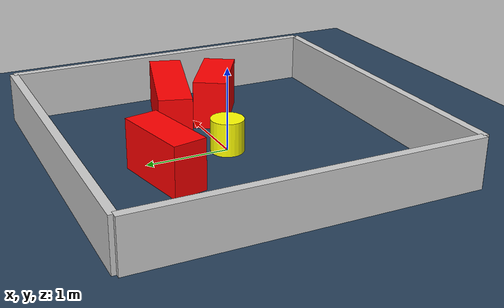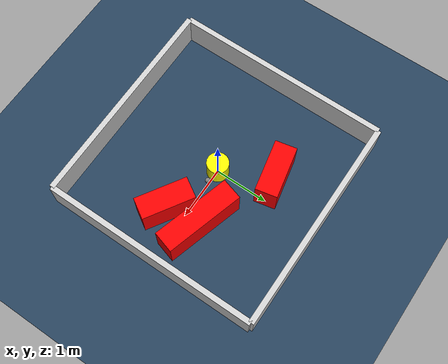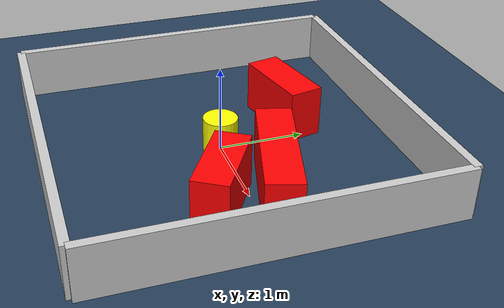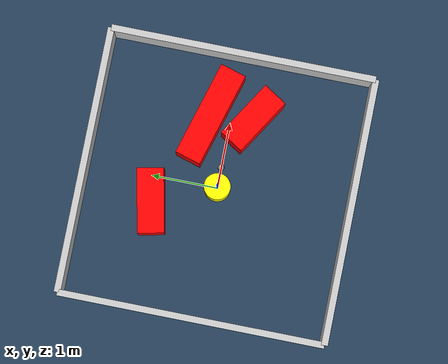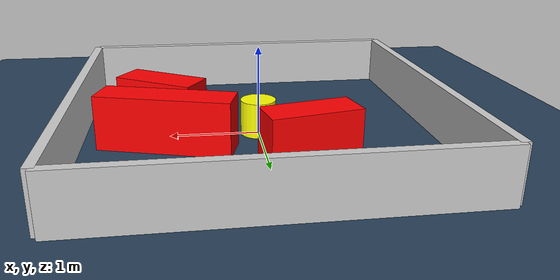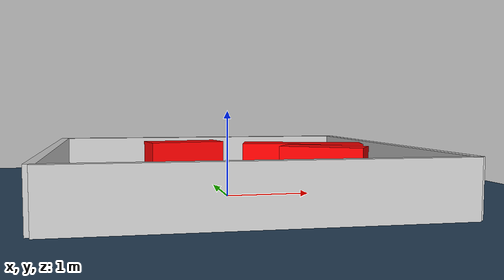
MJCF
<?xml version="1.0" ?>
<mujoco model="generated_environment">
  <option timestep="0.01" integrator="RK4" cone="elliptic"/>
  <default>
    <geom density="1"/>
  </default>
  <asset>
    <texture builtin="gradient" height="3072" rgb1="0.3 0.5 0.7" rgb2="0 0 0" type="skybox" width="512"/>
    <texture builtin="checker" height="300" mark="edge" markrgb="0.8 0.8 0.8" name="groundplane" rgb1="0.2 0.3 0.4" rgb2="0.1 0.2 0.3" type="2d" width="300"/>
    <material name="groundplane" reflectance="0.2" texrepeat="5 5" texture="groundplane" texuniform="true"/>
    <material name="robot" rgba="0.0 1.0 0.0 1"/>
  </asset>
  <worldbody>
    <light dir="0 0 -1" directional="true" pos="0 0 1.5"/>
    <geom condim="4" friction="1.0 0.005 0.001" material="groundplane" name="floor" size="0 0 0.05" type="plane"/>
    <body name="walls">
      <geom name="wall_1" condim="4" pos="-2.0 0.0 0.3" rgba="0.800000011920929 0.800000011920929 0.800000011920929 1.0" size="0.05 2.0 0.3" type="box"/>
      <geom name="wall_2" condim="4" pos="2.0 0.0 0.3" rgba="0.800000011920929 0.800000011920929 0.800000011920929 1.0" size="0.05 2.0 0.3" type="box"/>
      <geom name="wall_3" condim="4" pos="0.0 -2.0 0.3" rgba="0.800000011920929 0.800000011920929 0.800000011920929 1.0" size="2.0 0.05 0.3" type="box"/>
      <geom name="wall_4" condim="4" pos="0.0 2.0 0.3" rgba="0.800000011920929 0.800000011920929 0.800000011920929 1.0" size="2.0 0.05 0.3" type="box"/>
    </body>
    <body name="robot">
      <joint name="joint_x" type="slide" pos="0 0 0" axis="1 0 0"/>
      <joint name="joint_y" type="slide" pos="0 0 0" axis="0 1 0"/>
      <geom name="robot" type="sphere" pos="0.3 0.0 0.2" size="0.05" mass="5." friction="1.0 0.005 0.0001" condim="4" rgba="0.5 0.5 0.5 1.0"/>
      <site name="sensor_ball"/>
    </body>
    <body name="obstacle_movable_1">
      <geom name="obstacle_movable_1" condim="4" pos="0.0 0.0 0.2" euler="0 0 0.0" friction="1.0 0.005 0.001" rgba="1.0 1.0 0.0 1.0" size="0.2 0.2 0.0" type="cylinder" mass="0.1"/>
      <joint type="free"/>
    </body>
    <body name="obstacle_2_static">
      <geom name="obstacle_2_static" condim="4" pos="1.0201128550817131 0.30371139518630597 0.3" euler="0 0 343.7341666212247" friction="1.0 0.005 0.001" rgba="1 0 0 1" size="0.7346250376352379 0.2 0.3" type="box"/>
    </body>
    <body name="obstacle_3_static">
      <geom name="obstacle_3_static" condim="4" pos="-0.40764916568870513 0.9214482619173878 0.3" euler="0 0 191.78550207562253" friction="1.0 0.005 0.001" rgba="1 0 0 1" size="0.4819152310783794 0.2 0.3" type="box"/>
    </body>
    <body name="obstacle_4_static">
      <geom name="obstacle_4_static" condim="4" pos="1.086485362817359 -0.3267357339973045 0.3" euler="0 0 148.0368845068404" friction="1.0 0.005 0.001" rgba="1 0 0 1" size="0.48132273362557315 0.2 0.3" type="box"/>
    </body>
  </worldbody>
  <actuator>
    <motor name="actuator_x" joint="joint_x" gear="1" ctrlrange="-1 1"/>
    <motor name="actuator_y" joint="joint_y" gear="1" ctrlrange="-1 1"/>
  </actuator>
</mujoco>
